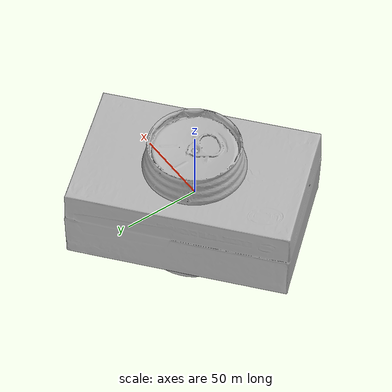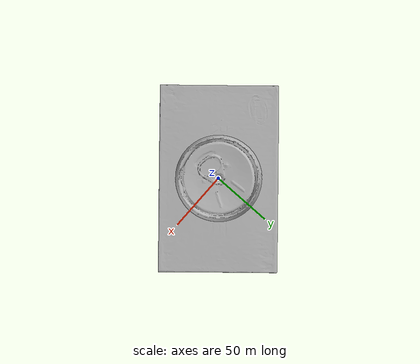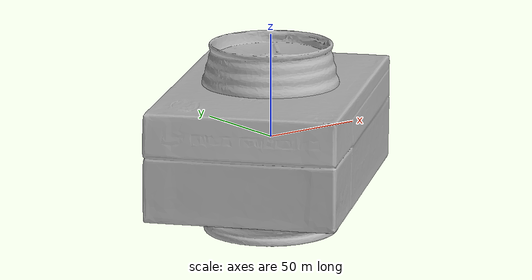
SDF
<sdf version="1.4">
 <world name="default">
  <light name="light1" type="point">
   <pose>0 0 1 0 0 0</pose>
   <diffuse>3 3 3 1</diffuse>
   <specular>3 3 3 1</specular>
  </light>
  <light name="light2" type="point">
   <pose>0 0.5 2 0 0 0</pose>
   <diffuse>1 1 1 1</diffuse>
   <specular>1 1 1 1</specular>
  </light>
  <light name="light3" type="point">
   <pose>0 0.5 2 0 0 0</pose>
   <diffuse>3 3 3 1</diffuse>
   <specular>3 3 3 1</specular>
  </light>
  <scene><ambient>0.7 0.7 0.7</ambient></scene>
  <model name="box1">
   <link name="link_box1">
    <collision name="default">
     <geometry>
      <mesh><uri>model://realsense_box/collision_meshes/collision.obj</uri><scale>1.0 1.0 1.0</scale></mesh>
     </geometry>
     <surface>
      <friction><ode><mu>0.5</mu><mu2>0.5</mu2></ode></friction>
      <contact><ode><max_vel>0</max_vel><min_depth>0.0001</min_depth><kp>1e8</kp></ode></contact>
     </surface>
    </collision>
    <visual name="default">
     <geometry>
      <mesh><uri>model://realsense_box/visual_meshes/visual.dae</uri><scale>1.0 1.0 1.0</scale></mesh>
     </geometry>
    </visual>
    <inertial>
     <mass>0.9783616662025452</mass>
     <pose>4.0744838770478964e-05 8.587493357481435e-05 -2.4153794583980925e-05 -0.00012602841694551038 -0.006358939977979225 0.005012324824875736</pose>
     <inertia>
      <ixx>0.0009306729</ixx>
      <iyy>0.0019425071</iyy>
      <izz>0.002403061</izz>
      <ixy>0</ixy>
      <ixz>0</ixz>
      <iyz>0</iyz>
     </inertia>
    </inertial>
   </link>
   <pose>0.08915654569864273 0.31798040866851807 0.027316059917211533 -1.3702007085117353e-05 1.385982926277301e-06 0.7047718936222802</pose>
  </model>
  <model name="box2">
   <link name="link_box2">
    <collision name="default">
     <geometry>
      <mesh><uri>model://wooden_puzzle2/collision_meshes/collision.obj</uri><scale>1.0 1.0 1.0</scale></mesh>
     </geometry>
     <surface>
      <friction><ode><mu>0.5</mu><mu2>0.5</mu2></ode></friction>
      <contact><ode><max_vel>0</max_vel><min_depth>0.0001</min_depth><kp>1e8</kp></ode></contact>
     </surface>
    </collision>
    <visual name="default">
     <geometry>
      <mesh><uri>model://wooden_puzzle2/visual_meshes/visual.dae</uri><scale>1.0 1.0 1.0</scale></mesh>
     </geometry>
    </visual>
    <inertial>
     <mass>0.024048319086432457</mass>
     <pose>2.7402536943554878e-05 4.997663199901581e-05 6.587122334167361e-05 -0.19203048535200862 0.6112800928970119 -0.6338660341545117</pose>
     <inertia>
      <ixx>4.470326e-06</ixx>
      <iyy>4.593511e-06</iyy>
      <izz>4.528165e-06</izz>
      <ixy>0</ixy>
      <ixz>0</ixz>
      <iyz>0</iyz>
     </inertia>
    </inertial>
   </link>
   <pose>0.21748310327529907 0.16744837164878845 0.01691773161292076 0.02084801796228262 0.0007218181426138308 0.0684826698937158</pose>
  </model>
  <model name="can1">
   <link name="link_can1">
    <collision name="default">
     <geometry>
      <mesh><uri>model://redbull/collision_meshes/collision.obj</uri><scale>1.0 1.0 1.0</scale></mesh>
     </geometry>
     <surface>
      <friction><ode><mu>0.5</mu><mu2>0.5</mu2></ode></friction>
      <contact><ode><max_vel>0</max_vel><min_depth>0.0001</min_depth><kp>1e8</kp></ode></contact>
     </surface>
    </collision>
    <visual name="default">
     <geometry>
      <mesh><uri>model://redbull/visual_meshes/visual.dae</uri><scale>1.0 1.0 1.0</scale></mesh>
     </geometry>
    </visual>
    <inertial>
     <mass>0.19214749336242676</mass>
     <pose>-2.212707477156073e-05 -0.00012659536150749773 -0.0006860988214612007 0.0011364686928787662 -0.01080099531045839 0.5859333437288349</pose>
     <inertia>
      <ixx>0.00018066002</ixx>
      <iyy>0.0001808125</iyy>
      <izz>0.0001072083</izz>
      <ixy>0</ixy>
      <ixz>0</ixz>
      <iyz>0</iyz>
     </inertia>
    </inertial>
   </link>
   <pose>0.11297477781772614 0.2325551062822342 0.04638607054948807 -0.010413724396967139 0.007332522136737301 0.17139869625814327</pose>
  </model>
  <model name="can2">
   <link name="link_can2">
    <collision name="default">
     <geometry>
      <mesh><uri>model://pepsi/collision_meshes/collision.obj</uri><scale>1.0 1.0 1.0</scale></mesh>
     </geometry>
     <surface>
      <friction><ode><mu>0.5</mu><mu2>0.5</mu2></ode></friction>
      <contact><ode><max_vel>0</max_vel><min_depth>0.0001</min_depth><kp>1e8</kp></ode></contact>
     </surface>
    </collision>
    <visual name="default">
     <geometry><mesh><uri>model://pepsi/visual_meshes/visual.dae</uri><scale>1.0 1.0 1.0</scale></mesh></geometry>
    </visual>
    <inertial>
     <mass>0.3079187572002411</mass>
     <pose>-7.5590331107378e-05 2.9931279641459696e-05 -0.0003384356386959553 -0.0010678548810066889 -0.0021735327588889423 0.5674125845328797</pose>
     <inertia>
      <ixx>0.0006134332</ixx>
      <iyy>0.0006129863</iyy>
      <izz>0.0001305606</izz>
      <ixy>0</ixy>
      <ixz>0</ixz>
      <iyz>0</iyz>
     </inertia>
    </inertial>
   </link>
   <pose>0.17897070944309235 0.3704807162284851 0.07449636608362198 -1.9759466747118164e-05 2.1514679812106222e-06 -0.4214074809957381</pose>
  </model>
  <physics type="ode">
   <max_contacts>50</max_contacts>
   <ode>
    <solver><type>quick</type><iters>75</iters></solver>
    <constraints>
     <contact_max_correcting_vel>0</contact_max_correcting_vel>
     <contact_surface_layer>0</contact_surface_layer>
    </constraints>
   </ode>
  </physics>
 </world>
</sdf>
